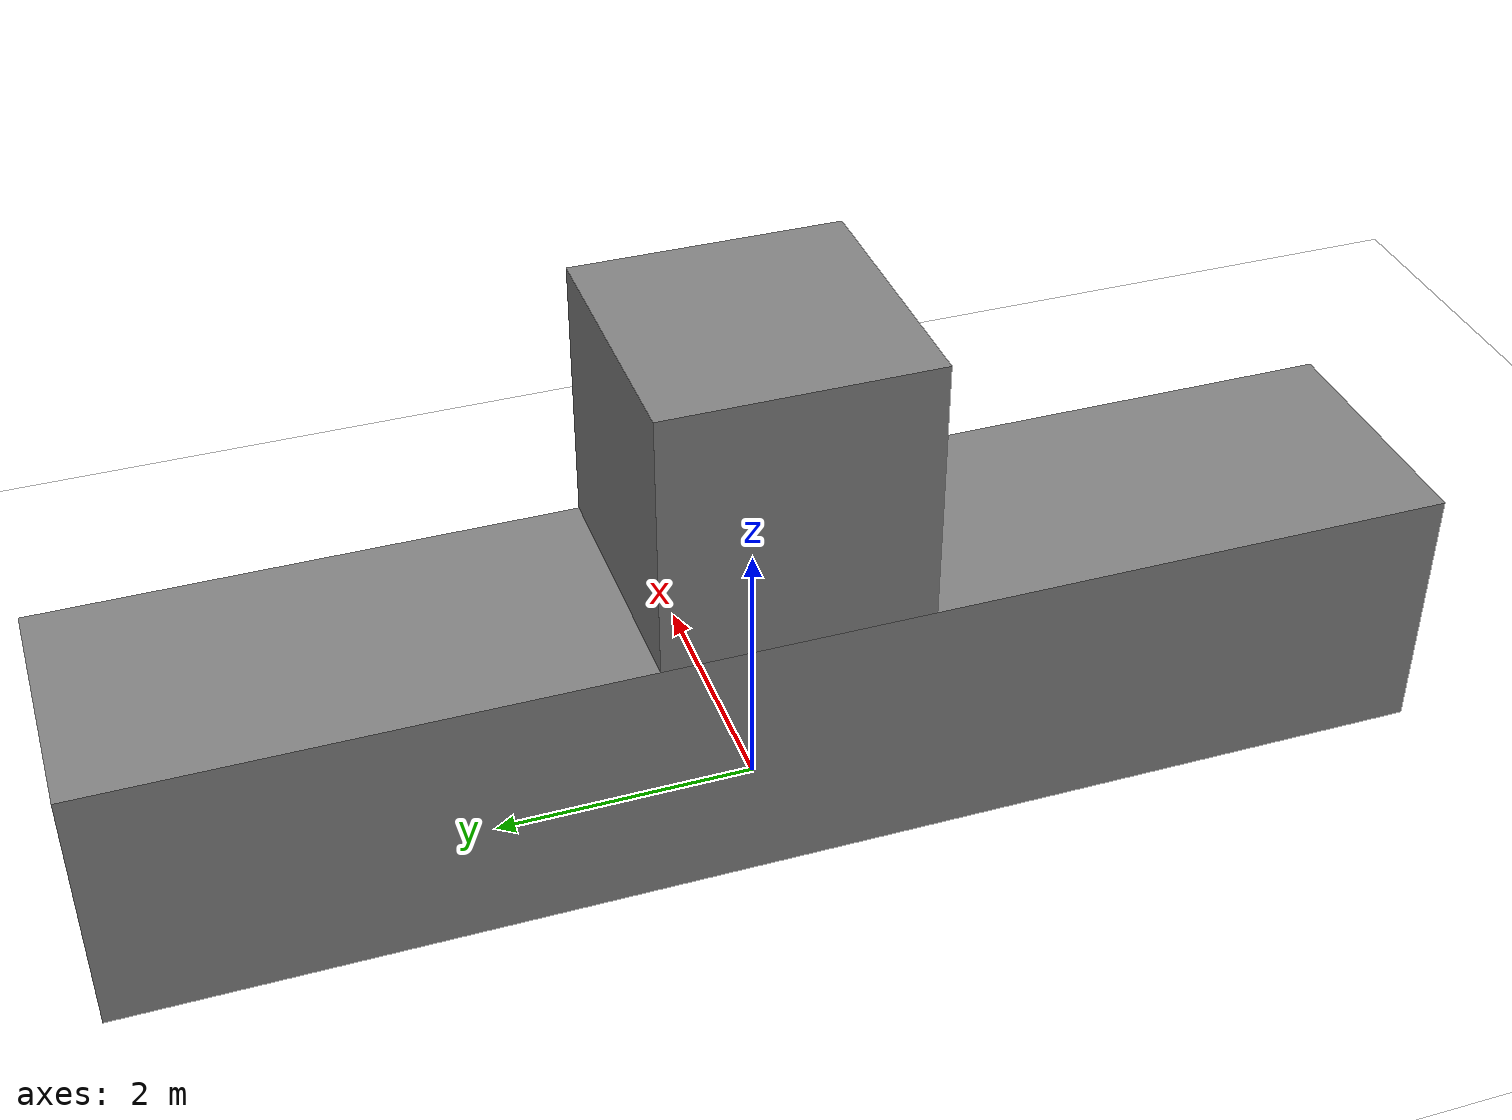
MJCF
<mujoco>
    <compiler autolimits="true"/>
    <option density="1000"/>

    <worldbody>
        <geom type="plane" size="10 10 .1" rgba="1 1 1 1"/>
        <light pos="0 0 20"/>
        <body pos="0 0 1">
            <geom type="box" size="1 5 1"/>
            <joint name="conveyor" type="slide" pos="0 -10 0" axis="0 1 0" damping="1000"/>
        </body>
        <body pos="0 0 3">
            <geom type="box" size="1 1 1"/>
            <freejoint/>
        </body>
    </worldbody>

    <actuator>
        <general name="conveyor" joint="conveyor" gainprm="0" biastype="affine" biasprm="10000"/>
    </actuator>
</mujoco>
